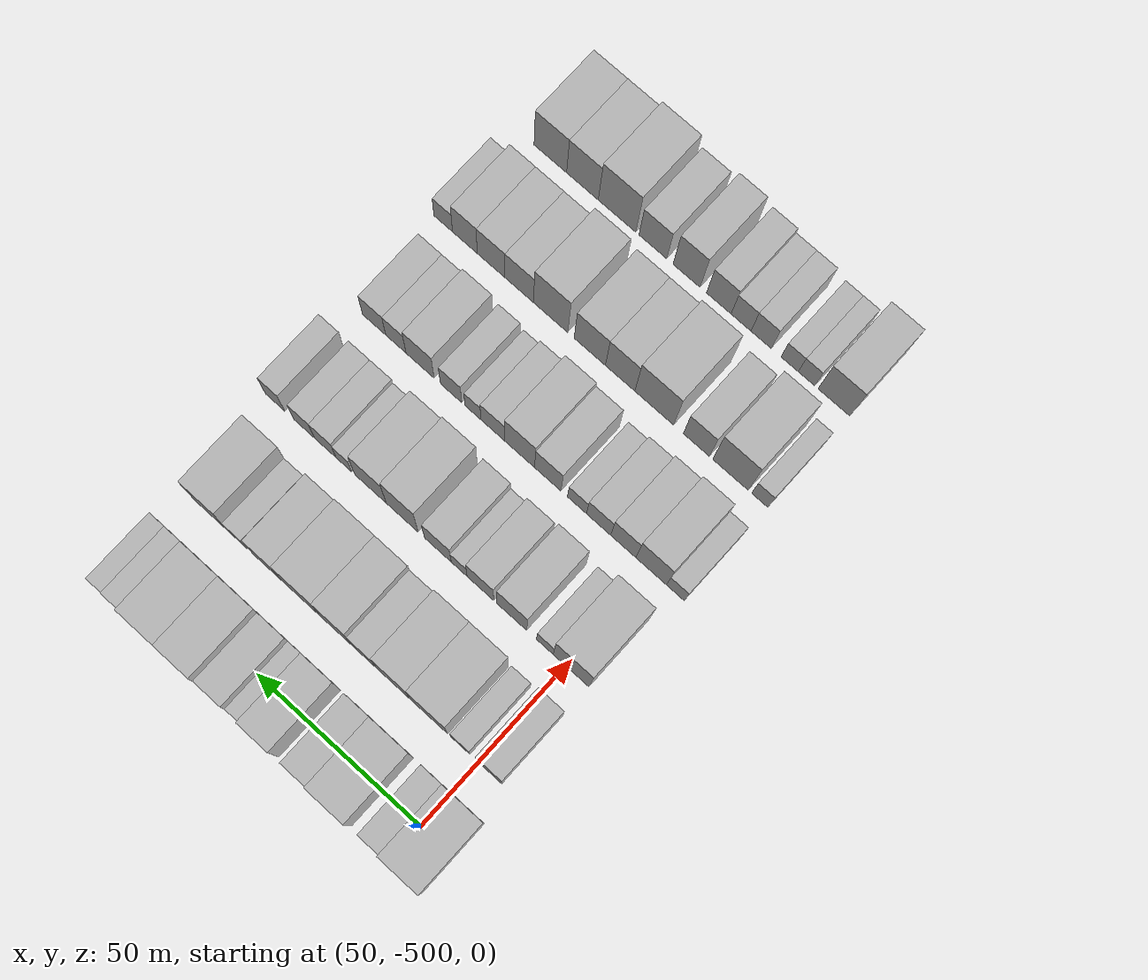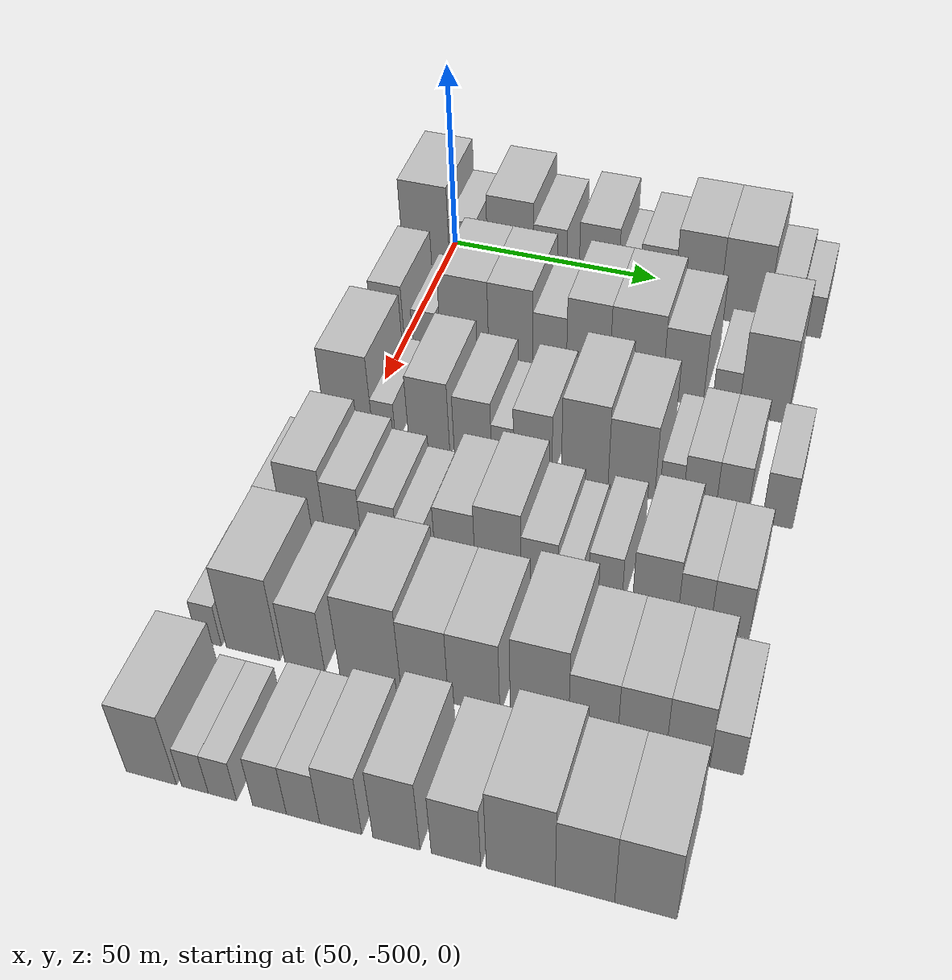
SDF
<sdf version="1.6">
 <world name="default">
  <model name="building_1">
   <static>1</static>
   <pose>50.0000 -504.0976 0 0.000000 0.000000 0.000000</pose>
   <link name="link">
    <pose>0 0 12.00 0 0 0</pose>
    <collision name="collision"><geometry><box><size>20.0000 11.8048 24.0000</size></box></geometry></collision>
    <visual name="visual">
     <cast_shadows>0</cast_shadows>
     <geometry><box><size>20.0000 11.8048 24.0000</size></box></geometry>
     <material>
      <script>
       <uri>model://HANNAS_wall/materials/scripts</uri>
       <uri>model://HANNAS_wall/materials/textures</uri>
       <name>vrc/HANNAS_wall</name>
      </script>
     </material>
    </visual>
   </link>
  </model>
  <model name="building_2">
   <static>1</static>
   <pose>50.0000 -494.9151 0 0.000000 0.000000 0.000000</pose>
   <link name="link">
    <pose>0 0 7.50 0 0 0</pose>
    <collision name="collision"><geometry><box><size>20.0000 6.5601 15.0000</size></box></geometry></collision>
    <visual name="visual">
     <cast_shadows>0</cast_shadows>
     <geometry><box><size>20.0000 6.5601 15.0000</size></box></geometry>
     <material>
      <script>
       <uri>model://HANNAS_wall/materials/scripts</uri>
       <uri>model://HANNAS_wall/materials/textures</uri>
       <name>vrc/HANNAS_wall</name>
      </script>
     </material>
    </visual>
   </link>
  </model>
  <model name="building_3">
   <static>1</static>
   <pose>50.0000 -482.9600 0 0.000000 0.000000 0.000000</pose>
   <link name="link">
    <pose>0 0 12.00 0 0 0</pose>
    <collision name="collision"><geometry><box><size>20.0000 11.3502 24.0000</size></box></geometry></collision>
    <visual name="visual">
     <cast_shadows>0</cast_shadows>
     <geometry><box><size>20.0000 11.3502 24.0000</size></box></geometry>
     <material>
      <script>
       <uri>model://HANNAS_wall/materials/scripts</uri>
       <uri>model://HANNAS_wall/materials/textures</uri>
       <name>vrc/HANNAS_wall</name>
      </script>
     </material>
    </visual>
   </link>
  </model>
  <model name="building_4">
   <static>1</static>
   <pose>50.0000 -473.3029 0 0.000000 0.000000 0.000000</pose>
   <link name="link">
    <pose>0 0 9.00 0 0 0</pose>
    <collision name="collision"><geometry><box><size>20.0000 7.9639 18.0000</size></box></geometry></collision>
    <visual name="visual">
     <cast_shadows>0</cast_shadows>
     <geometry><box><size>20.0000 7.9639 18.0000</size></box></geometry>
     <material>
      <script>
       <uri>model://HANNAS_wall/materials/scripts</uri>
       <uri>model://HANNAS_wall/materials/textures</uri>
       <name>vrc/HANNAS_wall</name>
      </script>
     </material>
    </visual>
   </link>
  </model>
  <model name="building_5">
   <static>1</static>
   <pose>50.0000 -461.6112 0 0.000000 0.000000 0.000000</pose>
   <link name="link">
    <pose>0 0 10.50 0 0 0</pose>
    <collision name="collision"><geometry><box><size>20.0000 9.4196 21.0000</size></box></geometry></collision>
    <visual name="visual">
     <cast_shadows>0</cast_shadows>
     <geometry><box><size>20.0000 9.4196 21.0000</size></box></geometry>
     <material>
      <script>
       <uri>model://HANNAS_wall/materials/scripts</uri>
       <uri>model://HANNAS_wall/materials/textures</uri>
       <name>vrc/HANNAS_wall</name>
      </script>
     </material>
    </visual>
   </link>
  </model>
  <model name="building_6">
   <static>1</static>
   <pose>50.0000 -454.3473 0 0.000000 0.000000 0.000000</pose>
   <link name="link">
    <pose>0 0 6.00 0 0 0</pose>
    <collision name="collision"><geometry><box><size>20.0000 5.1082 12.0000</size></box></geometry></collision>
    <visual name="visual">
     <cast_shadows>0</cast_shadows>
     <geometry><box><size>20.0000 5.1082 12.0000</size></box></geometry>
     <material>
      <script>
       <uri>model://HANNAS_wall/materials/scripts</uri>
       <uri>model://HANNAS_wall/materials/textures</uri>
       <name>vrc/HANNAS_wall</name>
      </script>
     </material>
    </visual>
   </link>
  </model>
  <model name="building_7">
   <static>1</static>
   <pose>50.0000 -447.6620 0 0.000000 0.000000 0.000000</pose>
   <link name="link">
    <pose>0 0 9.00 0 0 0</pose>
    <collision name="collision"><geometry><box><size>20.0000 8.2625 18.0000</size></box></geometry></collision>
    <visual name="visual">
     <cast_shadows>0</cast_shadows>
     <geometry><box><size>20.0000 8.2625 18.0000</size></box></geometry>
     <material>
      <script>
       <uri>model://HANNAS_wall/materials/scripts</uri>
       <uri>model://HANNAS_wall/materials/textures</uri>
       <name>vrc/HANNAS_wall</name>
      </script>
     </material>
    </visual>
   </link>
  </model>
  <model name="building_8">
   <static>1</static>
   <pose>50.0000 -438.2175 0 0.000000 0.000000 0.000000</pose>
   <link name="link">
    <pose>0 0 12.00 0 0 0</pose>
    <collision name="collision"><geometry><box><size>20.0000 10.6264 24.0000</size></box></geometry></collision>
    <visual name="visual">
     <cast_shadows>0</cast_shadows>
     <geometry><box><size>20.0000 10.6264 24.0000</size></box></geometry>
     <material>
      <script>
       <uri>model://HANNAS_wall/materials/scripts</uri>
       <uri>model://HANNAS_wall/materials/textures</uri>
       <name>vrc/HANNAS_wall</name>
      </script>
     </material>
    </visual>
   </link>
  </model>
  <model name="building_9">
   <static>1</static>
   <pose>50.0000 -427.2729 0 0.000000 0.000000 0.000000</pose>
   <link name="link">
    <pose>0 0 12.00 0 0 0</pose>
    <collision name="collision"><geometry><box><size>20.0000 11.2627 24.0000</size></box></geometry></collision>
    <visual name="visual">
     <cast_shadows>0</cast_shadows>
     <geometry><box><size>20.0000 11.2627 24.0000</size></box></geometry>
     <material>
      <script>
       <uri>model://HANNAS_wall/materials/scripts</uri>
       <uri>model://HANNAS_wall/materials/textures</uri>
       <name>vrc/HANNAS_wall</name>
      </script>
     </material>
    </visual>
   </link>
  </model>
  <model name="building_10">
   <static>1</static>
   <pose>50.0000 -418.1469 0 0.000000 0.000000 0.000000</pose>
   <link name="link">
    <pose>0 0 7.50 0 0 0</pose>
    <collision name="collision"><geometry><box><size>20.0000 6.9893 15.0000</size></box></geometry></collision>
    <visual name="visual">
     <cast_shadows>0</cast_shadows>
     <geometry><box><size>20.0000 6.9893 15.0000</size></box></geometry>
     <material>
      <script>
       <uri>model://HANNAS_wall/materials/scripts</uri>
       <uri>model://HANNAS_wall/materials/textures</uri>
       <name>vrc/HANNAS_wall</name>
      </script>
     </material>
    </visual>
   </link>
  </model>
  <model name="building_11">
   <static>1</static>
   <pose>50.0000 -411.9523 0 0.000000 0.000000 0.000000</pose>
   <link name="link">
    <pose>0 0 6.00 0 0 0</pose>
    <collision name="collision"><geometry><box><size>20.0000 5.3999 12.0000</size></box></geometry></collision>
    <visual name="visual">
     <cast_shadows>0</cast_shadows>
     <geometry><box><size>20.0000 5.3999 12.0000</size></box></geometry>
     <material>
      <script>
       <uri>model://HANNAS_wall/materials/scripts</uri>
       <uri>model://HANNAS_wall/materials/textures</uri>
       <name>vrc/HANNAS_wall</name>
      </script>
     </material>
    </visual>
   </link>
  </model>
  <model name="building_108">
   <static>1</static>
   <pose>79.0000 -503.1760 0 0.000000 0.000000 0.000000</pose>
   <link name="link">
    <pose>0 0 9.00 0 0 0</pose>
    <collision name="collision"><geometry><box><size>20.0000 7.6481 18.0000</size></box></geometry></collision>
    <visual name="visual">
     <cast_shadows>0</cast_shadows>
     <geometry><box><size>20.0000 7.6481 18.0000</size></box></geometry>
     <material>
      <script>
       <uri>model://HANNAS_wall/materials/scripts</uri>
       <uri>model://HANNAS_wall/materials/textures</uri>
       <name>vrc/HANNAS_wall</name>
      </script>
     </material>
    </visual>
   </link>
  </model>
  <model name="building_109">
   <static>1</static>
   <pose>79.0000 -494.5124 0 0.000000 0.000000 0.000000</pose>
   <link name="link">
    <pose>0 0 6.00 0 0 0</pose>
    <collision name="collision"><geometry><box><size>20.0000 5.6790 12.0000</size></box></geometry></collision>
    <visual name="visual">
     <cast_shadows>0</cast_shadows>
     <geometry><box><size>20.0000 5.6790 12.0000</size></box></geometry>
     <material>
      <script>
       <uri>model://HANNAS_wall/materials/scripts</uri>
       <uri>model://HANNAS_wall/materials/textures</uri>
       <name>vrc/HANNAS_wall</name>
      </script>
     </material>
    </visual>
   </link>
  </model>
  <model name="building_110">
   <static>1</static>
   <pose>79.0000 -485.0388 0 0.000000 0.000000 0.000000</pose>
   <link name="link">
    <pose>0 0 12.00 0 0 0</pose>
    <collision name="collision"><geometry><box><size>20.0000 11.2683 24.0000</size></box></geometry></collision>
    <visual name="visual">
     <cast_shadows>0</cast_shadows>
     <geometry><box><size>20.0000 11.2683 24.0000</size></box></geometry>
     <material>
      <script>
       <uri>model://HANNAS_wall/materials/scripts</uri>
       <uri>model://HANNAS_wall/materials/textures</uri>
       <name>vrc/HANNAS_wall</name>
      </script>
     </material>
    </visual>
   </link>
  </model>
  <model name="building_111">
   <static>1</static>
   <pose>79.0000 -474.2816 0 0.000000 0.000000 0.000000</pose>
   <link name="link">
    <pose>0 0 12.00 0 0 0</pose>
    <collision name="collision"><geometry><box><size>20.0000 10.2460 24.0000</size></box></geometry></collision>
    <visual name="visual">
     <cast_shadows>0</cast_shadows>
     <geometry><box><size>20.0000 10.2460 24.0000</size></box></geometry>
     <material>
      <script>
       <uri>model://HANNAS_wall/materials/scripts</uri>
       <uri>model://HANNAS_wall/materials/textures</uri>
       <name>vrc/HANNAS_wall</name>
      </script>
     </material>
    </visual>
   </link>
  </model>
  <model name="building_112">
   <static>1</static>
   <pose>79.0000 -465.3402 0 0.000000 0.000000 0.000000</pose>
   <link name="link">
    <pose>0 0 9.00 0 0 0</pose>
    <collision name="collision"><geometry><box><size>20.0000 7.6368 18.0000</size></box></geometry></collision>
    <visual name="visual">
     <cast_shadows>0</cast_shadows>
     <geometry><box><size>20.0000 7.6368 18.0000</size></box></geometry>
     <material>
      <script>
       <uri>model://HANNAS_wall/materials/scripts</uri>
       <uri>model://HANNAS_wall/materials/textures</uri>
       <name>vrc/HANNAS_wall</name>
      </script>
     </material>
    </visual>
   </link>
  </model>
  <model name="building_113">
   <static>1</static>
   <pose>79.0000 -456.6482 0 0.000000 0.000000 0.000000</pose>
   <link name="link">
    <pose>0 0 12.00 0 0 0</pose>
    <collision name="collision"><geometry><box><size>20.0000 9.7473 24.0000</size></box></geometry></collision>
    <visual name="visual">
     <cast_shadows>0</cast_shadows>
     <geometry><box><size>20.0000 9.7473 24.0000</size></box></geometry>
     <material>
      <script>
       <uri>model://HANNAS_wall/materials/scripts</uri>
       <uri>model://HANNAS_wall/materials/textures</uri>
       <name>vrc/HANNAS_wall</name>
      </script>
     </material>
    </visual>
   </link>
  </model>
  <model name="building_114">
   <static>1</static>
   <pose>79.0000 -445.8274 0 0.000000 0.000000 0.000000</pose>
   <link name="link">
    <pose>0 0 12.00 0 0 0</pose>
    <collision name="collision"><geometry><box><size>20.0000 11.8943 24.0000</size></box></geometry></collision>
    <visual name="visual">
     <cast_shadows>0</cast_shadows>
     <geometry><box><size>20.0000 11.8943 24.0000</size></box></geometry>
     <material>
      <script>
       <uri>model://HANNAS_wall/materials/scripts</uri>
       <uri>model://HANNAS_wall/materials/textures</uri>
       <name>vrc/HANNAS_wall</name>
      </script>
     </material>
    </visual>
   </link>
  </model>
  <model name="building_115">
   <static>1</static>
   <pose>79.0000 -435.3076 0 0.000000 0.000000 0.000000</pose>
   <link name="link">
    <pose>0 0 10.50 0 0 0</pose>
    <collision name="collision"><geometry><box><size>20.0000 9.1453 21.0000</size></box></geometry></collision>
    <visual name="visual">
     <cast_shadows>0</cast_shadows>
     <geometry><box><size>20.0000 9.1453 21.0000</size></box></geometry>
     <material>
      <script>
       <uri>model://HANNAS_wall/materials/scripts</uri>
       <uri>model://HANNAS_wall/materials/textures</uri>
       <name>vrc/HANNAS_wall</name>
      </script>
     </material>
    </visual>
   </link>
  </model>
  <model name="building_116">
   <static>1</static>
   <pose>79.0000 -425.8135 0 0.000000 0.000000 0.000000</pose>
   <link name="link">
    <pose>0 0 6.00 0 0 0</pose>
    <collision name="collision"><geometry><box><size>20.0000 5.8429 12.0000</size></box></geometry></collision>
    <visual name="visual">
     <cast_shadows>0</cast_shadows>
     <geometry><box><size>20.0000 5.8429 12.0000</size></box></geometry>
     <material>
      <script>
       <uri>model://HANNAS_wall/materials/scripts</uri>
       <uri>model://HANNAS_wall/materials/textures</uri>
       <name>vrc/HANNAS_wall</name>
      </script>
     </material>
    </visual>
   </link>
  </model>
  <model name="building_117">
   <static>1</static>
   <pose>79.0000 -417.5558 0 0.000000 0.000000 0.000000</pose>
   <link name="link">
    <pose>0 0 12.00 0 0 0</pose>
    <collision name="collision"><geometry><box><size>20.0000 10.6724 24.0000</size></box></geometry></collision>
    <visual name="visual">
     <cast_shadows>0</cast_shadows>
     <geometry><box><size>20.0000 10.6724 24.0000</size></box></geometry>
     <material>
      <script>
       <uri>model://HANNAS_wall/materials/scripts</uri>
       <uri>model://HANNAS_wall/materials/textures</uri>
       <name>vrc/HANNAS_wall</name>
      </script>
     </material>
    </visual>
   </link>
  </model>
  <model name="building_220">
   <static>1</static>
   <pose>108.0000 -501.5947 0 0.000000 0.000000 0.000000</pose>
   <link name="link">
    <pose>0 0 12.00 0 0 0</pose>
    <collision name="collision"><geometry><box><size>20.0000 10.8107 24.0000</size></box></geometry></collision>
    <visual name="visual">
     <cast_shadows>0</cast_shadows>
     <geometry><box><size>20.0000 10.8107 24.0000</size></box></geometry>
     <material>
      <script>
       <uri>model://HANNAS_wall/materials/scripts</uri>
       <uri>model://HANNAS_wall/materials/textures</uri>
       <name>vrc/HANNAS_wall</name>
      </script>
     </material>
    </visual>
   </link>
  </model>
  <model name="building_221">
   <static>1</static>
   <pose>108.0000 -493.6487 0 0.000000 0.000000 0.000000</pose>
   <link name="link">
    <pose>0 0 6.00 0 0 0</pose>
    <collision name="collision"><geometry><box><size>20.0000 5.0813 12.0000</size></box></geometry></collision>
    <visual name="visual">
     <cast_shadows>0</cast_shadows>
     <geometry><box><size>20.0000 5.0813 12.0000</size></box></geometry>
     <material>
      <script>
       <uri>model://HANNAS_wall/materials/scripts</uri>
       <uri>model://HANNAS_wall/materials/textures</uri>
       <name>vrc/HANNAS_wall</name>
      </script>
     </material>
    </visual>
   </link>
  </model>
  <model name="building_222">
   <static>1</static>
   <pose>108.0000 -483.5779 0 0.000000 0.000000 0.000000</pose>
   <link name="link">
    <pose>0 0 10.50 0 0 0</pose>
    <collision name="collision"><geometry><box><size>20.0000 9.0603 21.0000</size></box></geometry></collision>
    <visual name="visual">
     <cast_shadows>0</cast_shadows>
     <geometry><box><size>20.0000 9.0603 21.0000</size></box></geometry>
     <material>
      <script>
       <uri>model://HANNAS_wall/materials/scripts</uri>
       <uri>model://HANNAS_wall/materials/textures</uri>
       <name>vrc/HANNAS_wall</name>
      </script>
     </material>
    </visual>
   </link>
  </model>
  <model name="building_223">
   <static>1</static>
   <pose>108.0000 -473.9625 0 0.000000 0.000000 0.000000</pose>
   <link name="link">
    <pose>0 0 9.00 0 0 0</pose>
    <collision name="collision"><geometry><box><size>20.0000 8.1705 18.0000</size></box></geometry></collision>
    <visual name="visual">
     <cast_shadows>0</cast_shadows>
     <geometry><box><size>20.0000 8.1705 18.0000</size></box></geometry>
     <material>
      <script>
       <uri>model://HANNAS_wall/materials/scripts</uri>
       <uri>model://HANNAS_wall/materials/textures</uri>
       <name>vrc/HANNAS_wall</name>
      </script>
     </material>
    </visual>
   </link>
  </model>
  <model name="building_224">
   <static>1</static>
   <pose>108.0000 -467.4671 0 0.000000 0.000000 0.000000</pose>
   <link name="link">
    <pose>0 0 6.00 0 0 0</pose>
    <collision name="collision"><geometry><box><size>20.0000 4.8203 12.0000</size></box></geometry></collision>
    <visual name="visual">
     <cast_shadows>0</cast_shadows>
     <geometry><box><size>20.0000 4.8203 12.0000</size></box></geometry>
     <material>
      <script>
       <uri>model://HANNAS_wall/materials/scripts</uri>
       <uri>model://HANNAS_wall/materials/textures</uri>
       <name>vrc/HANNAS_wall</name>
      </script>
     </material>
    </visual>
   </link>
  </model>
  <model name="building_225">
   <static>1</static>
   <pose>108.0000 -460.9145 0 0.000000 0.000000 0.000000</pose>
   <link name="link">
    <pose>0 0 9.00 0 0 0</pose>
    <collision name="collision"><geometry><box><size>20.0000 8.2848 18.0000</size></box></geometry></collision>
    <visual name="visual">
     <cast_shadows>0</cast_shadows>
     <geometry><box><size>20.0000 8.2848 18.0000</size></box></geometry>
     <material>
      <script>
       <uri>model://HANNAS_wall/materials/scripts</uri>
       <uri>model://HANNAS_wall/materials/textures</uri>
       <name>vrc/HANNAS_wall</name>
      </script>
     </material>
    </visual>
   </link>
  </model>
  <model name="building_226">
   <static>1</static>
   <pose>108.0000 -449.7979 0 0.000000 0.000000 0.000000</pose>
   <link name="link">
    <pose>0 0 12.00 0 0 0</pose>
    <collision name="collision"><geometry><box><size>20.0000 9.9485 24.0000</size></box></geometry></collision>
    <visual name="visual">
     <cast_shadows>0</cast_shadows>
     <geometry><box><size>20.0000 9.9485 24.0000</size></box></geometry>
     <material>
      <script>
       <uri>model://HANNAS_wall/materials/scripts</uri>
       <uri>model://HANNAS_wall/materials/textures</uri>
       <name>vrc/HANNAS_wall</name>
      </script>
     </material>
    </visual>
   </link>
  </model>
  <model name="building_227">
   <static>1</static>
   <pose>108.0000 -439.8988 0 0.000000 0.000000 0.000000</pose>
   <link name="link">
    <pose>0 0 10.50 0 0 0</pose>
    <collision name="collision"><geometry><box><size>20.0000 9.8496 21.0000</size></box></geometry></collision>
    <visual name="visual">
     <cast_shadows>0</cast_shadows>
     <geometry><box><size>20.0000 9.8496 21.0000</size></box></geometry>
     <material>
      <script>
       <uri>model://HANNAS_wall/materials/scripts</uri>
       <uri>model://HANNAS_wall/materials/textures</uri>
       <name>vrc/HANNAS_wall</name>
      </script>
     </material>
    </visual>
   </link>
  </model>
  <model name="building_228">
   <static>1</static>
   <pose>108.0000 -431.5289 0 0.000000 0.000000 0.000000</pose>
   <link name="link">
    <pose>0 0 6.00 0 0 0</pose>
    <collision name="collision"><geometry><box><size>20.0000 4.8903 12.0000</size></box></geometry></collision>
    <visual name="visual">
     <cast_shadows>0</cast_shadows>
     <geometry><box><size>20.0000 4.8903 12.0000</size></box></geometry>
     <material>
      <script>
       <uri>model://HANNAS_wall/materials/scripts</uri>
       <uri>model://HANNAS_wall/materials/textures</uri>
       <name>vrc/HANNAS_wall</name>
      </script>
     </material>
    </visual>
   </link>
  </model>
  <model name="building_229">
   <static>1</static>
   <pose>108.0000 -425.6800 0 0.000000 0.000000 0.000000</pose>
   <link name="link">
    <pose>0 0 7.50 0 0 0</pose>
    <collision name="collision"><geometry><box><size>20.0000 6.8075 15.0000</size></box></geometry></collision>
    <visual name="visual">
     <cast_shadows>0</cast_shadows>
     <geometry><box><size>20.0000 6.8075 15.0000</size></box></geometry>
     <material>
      <script>
       <uri>model://HANNAS_wall/materials/scripts</uri>
       <uri>model://HANNAS_wall/materials/textures</uri>
       <name>vrc/HANNAS_wall</name>
      </script>
     </material>
    </visual>
   </link>
  </model>
  <model name="building_230">
   <static>1</static>
   <pose>108.0000 -419.0154 0 0.000000 0.000000 0.000000</pose>
   <link name="link">
    <pose>0 0 7.50 0 0 0</pose>
    <collision name="collision"><geometry><box><size>20.0000 6.5218 15.0000</size></box></geometry></collision>
    <visual name="visual">
     <cast_shadows>0</cast_shadows>
     <geometry><box><size>20.0000 6.5218 15.0000</size></box></geometry>
     <material>
      <script>
       <uri>model://HANNAS_wall/materials/scripts</uri>
       <uri>model://HANNAS_wall/materials/textures</uri>
       <name>vrc/HANNAS_wall</name>
      </script>
     </material>
    </visual>
   </link>
  </model>
  <model name="building_231">
   <static>1</static>
   <pose>108.0000 -409.6516 0 0.000000 0.000000 0.000000</pose>
   <link name="link">
    <pose>0 0 7.50 0 0 0</pose>
    <collision name="collision"><geometry><box><size>20.0000 6.2058 15.0000</size></box></geometry></collision>
    <visual name="visual">
     <cast_shadows>0</cast_shadows>
     <geometry><box><size>20.0000 6.2058 15.0000</size></box></geometry>
     <material>
      <script>
       <uri>model://HANNAS_wall/materials/scripts</uri>
       <uri>model://HANNAS_wall/materials/textures</uri>
       <name>vrc/HANNAS_wall</name>
      </script>
     </material>
    </visual>
   </link>
  </model>
  <model name="building_326">
   <static>1</static>
   <pose>137.0000 -507.3116 0 0.000000 0.000000 0.000000</pose>
   <link name="link">
    <pose>0 0 6.00 0 0 0</pose>
    <collision name="collision"><geometry><box><size>20.0000 5.3768 12.0000</size></box></geometry></collision>
    <visual name="visual">
     <cast_shadows>0</cast_shadows>
     <geometry><box><size>20.0000 5.3768 12.0000</size></box></geometry>
     <material>
      <script>
       <uri>model://HANNAS_wall/materials/scripts</uri>
       <uri>model://HANNAS_wall/materials/textures</uri>
       <name>vrc/HANNAS_wall</name>
      </script>
     </material>
    </visual>
   </link>
  </model>
  <model name="building_327">
   <static>1</static>
   <pose>137.0000 -500.0044 0 0.000000 0.000000 0.000000</pose>
   <link name="link">
    <pose>0 0 10.50 0 0 0</pose>
    <collision name="collision"><geometry><box><size>20.0000 9.2378 21.0000</size></box></geometry></collision>
    <visual name="visual">
     <cast_shadows>0</cast_shadows>
     <geometry><box><size>20.0000 9.2378 21.0000</size></box></geometry>
     <material>
      <script>
       <uri>model://HANNAS_wall/materials/scripts</uri>
       <uri>model://HANNAS_wall/materials/textures</uri>
       <name>vrc/HANNAS_wall</name>
      </script>
     </material>
    </visual>
   </link>
  </model>
  <model name="building_328">
   <static>1</static>
   <pose>137.0000 -491.5345 0 0.000000 0.000000 0.000000</pose>
   <link name="link">
    <pose>0 0 9.00 0 0 0</pose>
    <collision name="collision"><geometry><box><size>20.0000 7.7020 18.0000</size></box></geometry></collision>
    <visual name="visual">
     <cast_shadows>0</cast_shadows>
     <geometry><box><size>20.0000 7.7020 18.0000</size></box></geometry>
     <material>
      <script>
       <uri>model://HANNAS_wall/materials/scripts</uri>
       <uri>model://HANNAS_wall/materials/textures</uri>
       <name>vrc/HANNAS_wall</name>
      </script>
     </material>
    </visual>
   </link>
  </model>
  <model name="building_329">
   <static>1</static>
   <pose>137.0000 -483.9831 0 0.000000 0.000000 0.000000</pose>
   <link name="link">
    <pose>0 0 7.50 0 0 0</pose>
    <collision name="collision"><geometry><box><size>20.0000 7.4007 15.0000</size></box></geometry></collision>
    <visual name="visual">
     <cast_shadows>0</cast_shadows>
     <geometry><box><size>20.0000 7.4007 15.0000</size></box></geometry>
     <material>
      <script>
       <uri>model://HANNAS_wall/materials/scripts</uri>
       <uri>model://HANNAS_wall/materials/textures</uri>
       <name>vrc/HANNAS_wall</name>
      </script>
     </material>
    </visual>
   </link>
  </model>
  <model name="building_330">
   <static>1</static>
   <pose>137.0000 -477.3545 0 0.000000 0.000000 0.000000</pose>
   <link name="link">
    <pose>0 0 6.00 0 0 0</pose>
    <collision name="collision"><geometry><box><size>20.0000 5.8566 12.0000</size></box></geometry></collision>
    <visual name="visual">
     <cast_shadows>0</cast_shadows>
     <geometry><box><size>20.0000 5.8566 12.0000</size></box></geometry>
     <material>
      <script>
       <uri>model://HANNAS_wall/materials/scripts</uri>
       <uri>model://HANNAS_wall/materials/textures</uri>
       <name>vrc/HANNAS_wall</name>
      </script>
     </material>
    </visual>
   </link>
  </model>
  <model name="building_331">
   <static>1</static>
   <pose>137.0000 -468.3480 0 0.000000 0.000000 0.000000</pose>
   <link name="link">
    <pose>0 0 9.00 0 0 0</pose>
    <collision name="collision"><geometry><box><size>20.0000 8.1564 18.0000</size></box></geometry></collision>
    <visual name="visual">
     <cast_shadows>0</cast_shadows>
     <geometry><box><size>20.0000 8.1564 18.0000</size></box></geometry>
     <material>
      <script>
       <uri>model://HANNAS_wall/materials/scripts</uri>
       <uri>model://HANNAS_wall/materials/textures</uri>
       <name>vrc/HANNAS_wall</name>
      </script>
     </material>
    </visual>
   </link>
  </model>
  <model name="building_332">
   <static>1</static>
   <pose>137.0000 -459.5950 0 0.000000 0.000000 0.000000</pose>
   <link name="link">
    <pose>0 0 10.50 0 0 0</pose>
    <collision name="collision"><geometry><box><size>20.0000 9.3496 21.0000</size></box></geometry></collision>
    <visual name="visual">
     <cast_shadows>0</cast_shadows>
     <geometry><box><size>20.0000 9.3496 21.0000</size></box></geometry>
     <material>
      <script>
       <uri>model://HANNAS_wall/materials/scripts</uri>
       <uri>model://HANNAS_wall/materials/textures</uri>
       <name>vrc/HANNAS_wall</name>
      </script>
     </material>
    </visual>
   </link>
  </model>
  <model name="building_333">
   <static>1</static>
   <pose>137.0000 -451.2399 0 0.000000 0.000000 0.000000</pose>
   <link name="link">
    <pose>0 0 7.50 0 0 0</pose>
    <collision name="collision"><geometry><box><size>20.0000 7.3607 15.0000</size></box></geometry></collision>
    <visual name="visual">
     <cast_shadows>0</cast_shadows>
     <geometry><box><size>20.0000 7.3607 15.0000</size></box></geometry>
     <material>
      <script>
       <uri>model://HANNAS_wall/materials/scripts</uri>
       <uri>model://HANNAS_wall/materials/textures</uri>
       <name>vrc/HANNAS_wall</name>
      </script>
     </material>
    </visual>
   </link>
  </model>
  <model name="building_334">
   <static>1</static>
   <pose>137.0000 -445.0765 0 0.000000 0.000000 0.000000</pose>
   <link name="link">
    <pose>0 0 6.00 0 0 0</pose>
    <collision name="collision"><geometry><box><size>20.0000 4.9662 12.0000</size></box></geometry></collision>
    <visual name="visual">
     <cast_shadows>0</cast_shadows>
     <geometry><box><size>20.0000 4.9662 12.0000</size></box></geometry>
     <material>
      <script>
       <uri>model://HANNAS_wall/materials/scripts</uri>
       <uri>model://HANNAS_wall/materials/textures</uri>
       <name>vrc/HANNAS_wall</name>
      </script>
     </material>
    </visual>
   </link>
  </model>
  <model name="building_335">
   <static>1</static>
   <pose>137.0000 -438.2502 0 0.000000 0.000000 0.000000</pose>
   <link name="link">
    <pose>0 0 7.50 0 0 0</pose>
    <collision name="collision"><geometry><box><size>20.0000 6.6863 15.0000</size></box></geometry></collision>
    <visual name="visual">
     <cast_shadows>0</cast_shadows>
     <geometry><box><size>20.0000 6.6863 15.0000</size></box></geometry>
     <material>
      <script>
       <uri>model://HANNAS_wall/materials/scripts</uri>
       <uri>model://HANNAS_wall/materials/textures</uri>
       <name>vrc/HANNAS_wall</name>
      </script>
     </material>
    </visual>
   </link>
  </model>
  <model name="building_336">
   <static>1</static>
   <pose>137.0000 -428.4515 0 0.000000 0.000000 0.000000</pose>
   <link name="link">
    <pose>0 0 9.00 0 0 0</pose>
    <collision name="collision"><geometry><box><size>20.0000 8.9110 18.0000</size></box></geometry></collision>
    <visual name="visual">
     <cast_shadows>0</cast_shadows>
     <geometry><box><size>20.0000 8.9110 18.0000</size></box></geometry>
     <material>
      <script>
       <uri>model://HANNAS_wall/materials/scripts</uri>
       <uri>model://HANNAS_wall/materials/textures</uri>
       <name>vrc/HANNAS_wall</name>
      </script>
     </material>
    </visual>
   </link>
  </model>
  <model name="building_337">
   <static>1</static>
   <pose>137.0000 -420.7883 0 0.000000 0.000000 0.000000</pose>
   <link name="link">
    <pose>0 0 7.50 0 0 0</pose>
    <collision name="collision"><geometry><box><size>20.0000 6.4155 15.0000</size></box></geometry></collision>
    <visual name="visual">
     <cast_shadows>0</cast_shadows>
     <geometry><box><size>20.0000 6.4155 15.0000</size></box></geometry>
     <material>
      <script>
       <uri>model://HANNAS_wall/materials/scripts</uri>
       <uri>model://HANNAS_wall/materials/textures</uri>
       <name>vrc/HANNAS_wall</name>
      </script>
     </material>
    </visual>
   </link>
  </model>
  <model name="building_338">
   <static>1</static>
   <pose>137.0000 -413.8832 0 0.000000 0.000000 0.000000</pose>
   <link name="link">
    <pose>0 0 7.50 0 0 0</pose>
    <collision name="collision"><geometry><box><size>20.0000 7.3945 15.0000</size></box></geometry></collision>
    <visual name="visual">
     <cast_shadows>0</cast_shadows>
     <geometry><box><size>20.0000 7.3945 15.0000</size></box></geometry>
     <material>
      <script>
       <uri>model://HANNAS_wall/materials/scripts</uri>
       <uri>model://HANNAS_wall/materials/textures</uri>
       <name>vrc/HANNAS_wall</name>
      </script>
     </material>
    </visual>
   </link>
  </model>
  <model name="building_445">
   <static>1</static>
   <pose>166.0000 -507.5265 0 0.000000 0.000000 0.000000</pose>
   <link name="link">
    <pose>0 0 6.00 0 0 0</pose>
    <collision name="collision"><geometry><box><size>20.0000 4.9470 12.0000</size></box></geometry></collision>
    <visual name="visual">
     <cast_shadows>0</cast_shadows>
     <geometry><box><size>20.0000 4.9470 12.0000</size></box></geometry>
     <material>
      <script>
       <uri>model://HANNAS_wall/materials/scripts</uri>
       <uri>model://HANNAS_wall/materials/textures</uri>
       <name>vrc/HANNAS_wall</name>
      </script>
     </material>
    </visual>
   </link>
  </model>
  <model name="building_446">
   <static>1</static>
   <pose>166.0000 -498.6564 0 0.000000 0.000000 0.000000</pose>
   <link name="link">
    <pose>0 0 12.00 0 0 0</pose>
    <collision name="collision"><geometry><box><size>20.0000 10.7931 24.0000</size></box></geometry></collision>
    <visual name="visual">
     <cast_shadows>0</cast_shadows>
     <geometry><box><size>20.0000 10.7931 24.0000</size></box></geometry>
     <material>
      <script>
       <uri>model://HANNAS_wall/materials/scripts</uri>
       <uri>model://HANNAS_wall/materials/textures</uri>
       <name>vrc/HANNAS_wall</name>
      </script>
     </material>
    </visual>
   </link>
  </model>
  <model name="building_447">
   <static>1</static>
   <pose>166.0000 -488.2794 0 0.000000 0.000000 0.000000</pose>
   <link name="link">
    <pose>0 0 9.00 0 0 0</pose>
    <collision name="collision"><geometry><box><size>20.0000 7.9611 18.0000</size></box></geometry></collision>
    <visual name="visual">
     <cast_shadows>0</cast_shadows>
     <geometry><box><size>20.0000 7.9611 18.0000</size></box></geometry>
     <material>
      <script>
       <uri>model://HANNAS_wall/materials/scripts</uri>
       <uri>model://HANNAS_wall/materials/textures</uri>
       <name>vrc/HANNAS_wall</name>
      </script>
     </material>
    </visual>
   </link>
  </model>
  <model name="building_448">
   <static>1</static>
   <pose>166.0000 -475.3234 0 0.000000 0.000000 0.000000</pose>
   <link name="link">
    <pose>0 0 12.00 0 0 0</pose>
    <collision name="collision"><geometry><box><size>20.0000 11.9509 24.0000</size></box></geometry></collision>
    <visual name="visual">
     <cast_shadows>0</cast_shadows>
     <geometry><box><size>20.0000 11.9509 24.0000</size></box></geometry>
     <material>
      <script>
       <uri>model://HANNAS_wall/materials/scripts</uri>
       <uri>model://HANNAS_wall/materials/textures</uri>
       <name>vrc/HANNAS_wall</name>
      </script>
     </material>
    </visual>
   </link>
  </model>
  <model name="building_449">
   <static>1</static>
   <pose>166.0000 -464.7831 0 0.000000 0.000000 0.000000</pose>
   <link name="link">
    <pose>0 0 10.50 0 0 0</pose>
    <collision name="collision"><geometry><box><size>20.0000 9.1297 21.0000</size></box></geometry></collision>
    <visual name="visual">
     <cast_shadows>0</cast_shadows>
     <geometry><box><size>20.0000 9.1297 21.0000</size></box></geometry>
     <material>
      <script>
       <uri>model://HANNAS_wall/materials/scripts</uri>
       <uri>model://HANNAS_wall/materials/textures</uri>
       <name>vrc/HANNAS_wall</name>
      </script>
     </material>
    </visual>
   </link>
  </model>
  <model name="building_450">
   <static>1</static>
   <pose>166.0000 -455.3426 0 0.000000 0.000000 0.000000</pose>
   <link name="link">
    <pose>0 0 10.50 0 0 0</pose>
    <collision name="collision"><geometry><box><size>20.0000 9.7511 21.0000</size></box></geometry></collision>
    <visual name="visual">
     <cast_shadows>0</cast_shadows>
     <geometry><box><size>20.0000 9.7511 21.0000</size></box></geometry>
     <material>
      <script>
       <uri>model://HANNAS_wall/materials/scripts</uri>
       <uri>model://HANNAS_wall/materials/textures</uri>
       <name>vrc/HANNAS_wall</name>
      </script>
     </material>
    </visual>
   </link>
  </model>
  <model name="building_451">
   <static>1</static>
   <pose>166.0000 -443.0685 0 0.000000 0.000000 0.000000</pose>
   <link name="link">
    <pose>0 0 12.00 0 0 0</pose>
    <collision name="collision"><geometry><box><size>20.0000 10.7972 24.0000</size></box></geometry></collision>
    <visual name="visual">
     <cast_shadows>0</cast_shadows>
     <geometry><box><size>20.0000 10.7972 24.0000</size></box></geometry>
     <material>
      <script>
       <uri>model://HANNAS_wall/materials/scripts</uri>
       <uri>model://HANNAS_wall/materials/textures</uri>
       <name>vrc/HANNAS_wall</name>
      </script>
     </material>
    </visual>
   </link>
  </model>
  <model name="building_452">
   <static>1</static>
   <pose>166.0000 -433.1751 0 0.000000 0.000000 0.000000</pose>
   <link name="link">
    <pose>0 0 9.00 0 0 0</pose>
    <collision name="collision"><geometry><box><size>20.0000 8.9896 18.0000</size></box></geometry></collision>
    <visual name="visual">
     <cast_shadows>0</cast_shadows>
     <geometry><box><size>20.0000 8.9896 18.0000</size></box></geometry>
     <material>
      <script>
       <uri>model://HANNAS_wall/materials/scripts</uri>
       <uri>model://HANNAS_wall/materials/textures</uri>
       <name>vrc/HANNAS_wall</name>
      </script>
     </material>
    </visual>
   </link>
  </model>
  <model name="building_453">
   <static>1</static>
   <pose>166.0000 -424.2843 0 0.000000 0.000000 0.000000</pose>
   <link name="link">
    <pose>0 0 9.00 0 0 0</pose>
    <collision name="collision"><geometry><box><size>20.0000 8.7921 18.0000</size></box></geometry></collision>
    <visual name="visual">
     <cast_shadows>0</cast_shadows>
     <geometry><box><size>20.0000 8.7921 18.0000</size></box></geometry>
     <material>
      <script>
       <uri>model://HANNAS_wall/materials/scripts</uri>
       <uri>model://HANNAS_wall/materials/textures</uri>
       <name>vrc/HANNAS_wall</name>
      </script>
     </material>
    </visual>
   </link>
  </model>
  <model name="building_454">
   <static>1</static>
   <pose>166.0000 -415.9318 0 0.000000 0.000000 0.000000</pose>
   <link name="link">
    <pose>0 0 9.00 0 0 0</pose>
    <collision name="collision"><geometry><box><size>20.0000 7.9128 18.0000</size></box></geometry></collision>
    <visual name="visual">
     <cast_shadows>0</cast_shadows>
     <geometry><box><size>20.0000 7.9128 18.0000</size></box></geometry>
     <material>
      <script>
       <uri>model://HANNAS_wall/materials/scripts</uri>
       <uri>model://HANNAS_wall/materials/textures</uri>
       <name>vrc/HANNAS_wall</name>
      </script>
     </material>
    </visual>
   </link>
  </model>
  <model name="building_455">
   <static>1</static>
   <pose>166.0000 -409.0095 0 0.000000 0.000000 0.000000</pose>
   <link name="link">
    <pose>0 0 6.00 0 0 0</pose>
    <collision name="collision"><geometry><box><size>20.0000 5.9318 12.0000</size></box></geometry></collision>
    <visual name="visual">
     <cast_shadows>0</cast_shadows>
     <geometry><box><size>20.0000 5.9318 12.0000</size></box></geometry>
     <material>
      <script>
       <uri>model://HANNAS_wall/materials/scripts</uri>
       <uri>model://HANNAS_wall/materials/textures</uri>
       <name>vrc/HANNAS_wall</name>
      </script>
     </material>
    </visual>
   </link>
  </model>
  <model name="building_563">
   <static>1</static>
   <pose>195.0000 -505.1841 0 0.000000 0.000000 0.000000</pose>
   <link name="link">
    <pose>0 0 10.50 0 0 0</pose>
    <collision name="collision"><geometry><box><size>20.0000 9.6318 21.0000</size></box></geometry></collision>
    <visual name="visual">
     <cast_shadows>0</cast_shadows>
     <geometry><box><size>20.0000 9.6318 21.0000</size></box></geometry>
     <material>
      <script>
       <uri>model://HANNAS_wall/materials/scripts</uri>
       <uri>model://HANNAS_wall/materials/textures</uri>
       <name>vrc/HANNAS_wall</name>
      </script>
     </material>
    </visual>
   </link>
  </model>
  <model name="building_564">
   <static>1</static>
   <pose>195.0000 -496.8628 0 0.000000 0.000000 0.000000</pose>
   <link name="link">
    <pose>0 0 6.00 0 0 0</pose>
    <collision name="collision"><geometry><box><size>20.0000 5.0108 12.0000</size></box></geometry></collision>
    <visual name="visual">
     <cast_shadows>0</cast_shadows>
     <geometry><box><size>20.0000 5.0108 12.0000</size></box></geometry>
     <material>
      <script>
       <uri>model://HANNAS_wall/materials/scripts</uri>
       <uri>model://HANNAS_wall/materials/textures</uri>
       <name>vrc/HANNAS_wall</name>
      </script>
     </material>
    </visual>
   </link>
  </model>
  <model name="building_565">
   <static>1</static>
   <pose>195.0000 -491.7111 0 0.000000 0.000000 0.000000</pose>
   <link name="link">
    <pose>0 0 6.00 0 0 0</pose>
    <collision name="collision"><geometry><box><size>20.0000 5.2925 12.0000</size></box></geometry></collision>
    <visual name="visual">
     <cast_shadows>0</cast_shadows>
     <geometry><box><size>20.0000 5.2925 12.0000</size></box></geometry>
     <material>
      <script>
       <uri>model://HANNAS_wall/materials/scripts</uri>
       <uri>model://HANNAS_wall/materials/textures</uri>
       <name>vrc/HANNAS_wall</name>
      </script>
     </material>
    </visual>
   </link>
  </model>
  <model name="building_566">
   <static>1</static>
   <pose>195.0000 -482.9403 0 0.000000 0.000000 0.000000</pose>
   <link name="link">
    <pose>0 0 7.50 0 0 0</pose>
    <collision name="collision"><geometry><box><size>20.0000 6.2490 15.0000</size></box></geometry></collision>
    <visual name="visual">
     <cast_shadows>0</cast_shadows>
     <geometry><box><size>20.0000 6.2490 15.0000</size></box></geometry>
     <material>
      <script>
       <uri>model://HANNAS_wall/materials/scripts</uri>
       <uri>model://HANNAS_wall/materials/textures</uri>
       <name>vrc/HANNAS_wall</name>
      </script>
     </material>
    </visual>
   </link>
  </model>
  <model name="building_567">
   <static>1</static>
   <pose>195.0000 -476.7557 0 0.000000 0.000000 0.000000</pose>
   <link name="link">
    <pose>0 0 7.50 0 0 0</pose>
    <collision name="collision"><geometry><box><size>20.0000 6.1201 15.0000</size></box></geometry></collision>
    <visual name="visual">
     <cast_shadows>0</cast_shadows>
     <geometry><box><size>20.0000 6.1201 15.0000</size></box></geometry>
     <material>
      <script>
       <uri>model://HANNAS_wall/materials/scripts</uri>
       <uri>model://HANNAS_wall/materials/textures</uri>
       <name>vrc/HANNAS_wall</name>
      </script>
     </material>
    </visual>
   </link>
  </model>
  <model name="building_568">
   <static>1</static>
   <pose>195.0000 -469.8909 0 0.000000 0.000000 0.000000</pose>
   <link name="link">
    <pose>0 0 9.00 0 0 0</pose>
    <collision name="collision"><geometry><box><size>20.0000 7.6095 18.0000</size></box></geometry></collision>
    <visual name="visual">
     <cast_shadows>0</cast_shadows>
     <geometry><box><size>20.0000 7.6095 18.0000</size></box></geometry>
     <material>
      <script>
       <uri>model://HANNAS_wall/materials/scripts</uri>
       <uri>model://HANNAS_wall/materials/textures</uri>
       <name>vrc/HANNAS_wall</name>
      </script>
     </material>
    </visual>
   </link>
  </model>
  <model name="building_569">
   <static>1</static>
   <pose>195.0000 -459.8814 0 0.000000 0.000000 0.000000</pose>
   <link name="link">
    <pose>0 0 10.50 0 0 0</pose>
    <collision name="collision"><geometry><box><size>20.0000 8.4096 21.0000</size></box></geometry></collision>
    <visual name="visual">
     <cast_shadows>0</cast_shadows>
     <geometry><box><size>20.0000 8.4096 21.0000</size></box></geometry>
     <material>
      <script>
       <uri>model://HANNAS_wall/materials/scripts</uri>
       <uri>model://HANNAS_wall/materials/textures</uri>
       <name>vrc/HANNAS_wall</name>
      </script>
     </material>
    </visual>
   </link>
  </model>
  <model name="building_570">
   <static>1</static>
   <pose>195.0000 -449.3354 0 0.000000 0.000000 0.000000</pose>
   <link name="link">
    <pose>0 0 9.00 0 0 0</pose>
    <collision name="collision"><geometry><box><size>20.0000 8.6824 18.0000</size></box></geometry></collision>
    <visual name="visual">
     <cast_shadows>0</cast_shadows>
     <geometry><box><size>20.0000 8.6824 18.0000</size></box></geometry>
     <material>
      <script>
       <uri>model://HANNAS_wall/materials/scripts</uri>
       <uri>model://HANNAS_wall/materials/textures</uri>
       <name>vrc/HANNAS_wall</name>
      </script>
     </material>
    </visual>
   </link>
  </model>
  <model name="building_571">
   <static>1</static>
   <pose>195.0000 -438.0700 0 0.000000 0.000000 0.000000</pose>
   <link name="link">
    <pose>0 0 12.00 0 0 0</pose>
    <collision name="collision"><geometry><box><size>20.0000 11.8485 24.0000</size></box></geometry></collision>
    <visual name="visual">
     <cast_shadows>0</cast_shadows>
     <geometry><box><size>20.0000 11.8485 24.0000</size></box></geometry>
     <material>
      <script>
       <uri>model://HANNAS_wall/materials/scripts</uri>
       <uri>model://HANNAS_wall/materials/textures</uri>
       <name>vrc/HANNAS_wall</name>
      </script>
     </material>
    </visual>
   </link>
  </model>
  <model name="building_572">
   <static>1</static>
   <pose>195.0000 -427.1064 0 0.000000 0.000000 0.000000</pose>
   <link name="link">
    <pose>0 0 10.50 0 0 0</pose>
    <collision name="collision"><geometry><box><size>20.0000 10.0788 21.0000</size></box></geometry></collision>
    <visual name="visual">
     <cast_shadows>0</cast_shadows>
     <geometry><box><size>20.0000 10.0788 21.0000</size></box></geometry>
     <material>
      <script>
       <uri>model://HANNAS_wall/materials/scripts</uri>
       <uri>model://HANNAS_wall/materials/textures</uri>
       <name>vrc/HANNAS_wall</name>
      </script>
     </material>
    </visual>
   </link>
  </model>
  <model name="building_573">
   <static>1</static>
   <pose>195.0000 -416.8634 0 0.000000 0.000000 0.000000</pose>
   <link name="link">
    <pose>0 0 10.50 0 0 0</pose>
    <collision name="collision"><geometry><box><size>20.0000 10.4071 21.0000</size></box></geometry></collision>
    <visual name="visual">
     <cast_shadows>0</cast_shadows>
     <geometry><box><size>20.0000 10.4071 21.0000</size></box></geometry>
     <material>
      <script>
       <uri>model://HANNAS_wall/materials/scripts</uri>
       <uri>model://HANNAS_wall/materials/textures</uri>
       <name>vrc/HANNAS_wall</name>
      </script>
     </material>
    </visual>
   </link>
  </model>
 </world>
</sdf>
